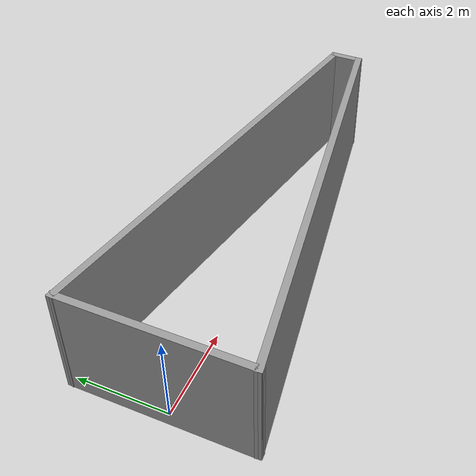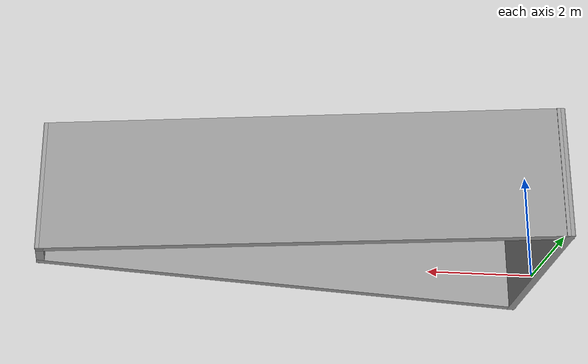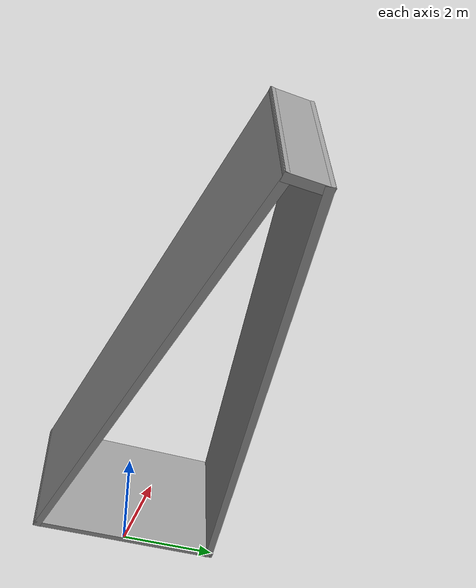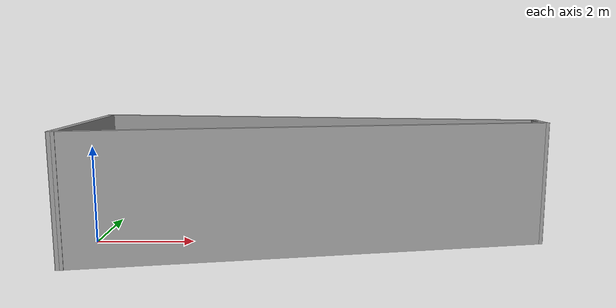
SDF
<?xml version='1.0'?>
<sdf version='1.7'>
  <model name='ten_corridor_2'>
    <pose>4.505 0.075862 0 0 -0 0</pose>
    <link name='Wall_11'>
      <collision name='Wall_11_Collision'>
        <geometry>
          <box>
            <size>4 0.15 2.5</size>
          </box>
        </geometry>
        <pose>0 0 1.25 0 -0 0</pose>
      </collision>
      <visual name='Wall_11_Visual'>
        <pose>0 0 1.25 0 -0 0</pose>
        <geometry>
          <box>
            <size>4 0.15 2.5</size>
          </box>
        </geometry>
        <material>
          <script>
            <uri>file://media/materials/scripts/gazebo.material</uri>
            <name>Gazebo/Grey</name>
          </script>
          <ambient>1 1 1 1</ambient>
        </material>
        <meta>
          <layer>0</layer>
        </meta>
      </visual>
      <pose>-4.625 -0.000862 0 0 -0 -1.5708</pose>
    </link>
    <link name='Wall_13'>
      <collision name='Wall_13_Collision'>
        <geometry>
          <box>
            <size>0.75 0.15 2.5</size>
          </box>
        </geometry>
        <pose>0 0 1.25 0 -0 0</pose>
      </collision>
      <visual name='Wall_13_Visual'>
        <pose>0 0 1.25 0 -0 0</pose>
        <geometry>
          <box>
            <size>0.75 0.15 2.5</size>
          </box>
        </geometry>
        <material>
          <script>
            <uri>file://media/materials/scripts/gazebo.material</uri>
            <name>Gazebo/Grey</name>
          </script>
          <ambient>1 1 1 1</ambient>
        </material>
        <meta>
          <layer>0</layer>
        </meta>
      </visual>
      <pose>4.625 -0.135862 0 0 -0 -1.5708</pose>
    </link>
    <link name='Wall_15'>
      <collision name='Wall_15_Collision'>
        <geometry>
          <box>
            <size>9.56595 0.15 2.5</size>
          </box>
        </geometry>
        <pose>0 0 1.25 0 -0 0</pose>
      </collision>
      <visual name='Wall_15_Visual'>
        <pose>0 0 1.25 0 -0 0</pose>
        <geometry>
          <box>
            <size>9.56595 0.15 2.5</size>
          </box>
        </geometry>
        <material>
          <script>
            <uri>file://media/materials/scripts/gazebo.material</uri>
            <name>Gazebo/Grey</name>
          </script>
          <ambient>1 1 1 1</ambient>
        </material>
        <meta>
          <layer>0</layer>
        </meta>
      </visual>
      <pose>0 1.04414 0 0 -0 -0.188023</pose>
    </link>
    <link name='Wall_17'>
      <collision name='Wall_17_Collision'>
        <geometry>
          <box>
            <size>9.51924 0.15 2.5</size>
          </box>
        </geometry>
        <pose>0 0 1.25 0 -0 0</pose>
      </collision>
      <visual name='Wall_17_Visual'>
        <pose>0 0 1.25 0 -0 0</pose>
        <geometry>
          <box>
            <size>9.51924 0.15 2.5</size>
          </box>
        </geometry>
        <material>
          <script>
            <uri>file://media/materials/scripts/gazebo.material</uri>
            <name>Gazebo/Grey</name>
          </script>
          <ambient>1 1 1 1</ambient>
        </material>
        <meta>
          <layer>0</layer>
        </meta>
      </visual>
      <pose>0 -1.18086 0 0 -0 0.159709</pose>
    </link>
    <static>1</static>
  </model>
</sdf>
